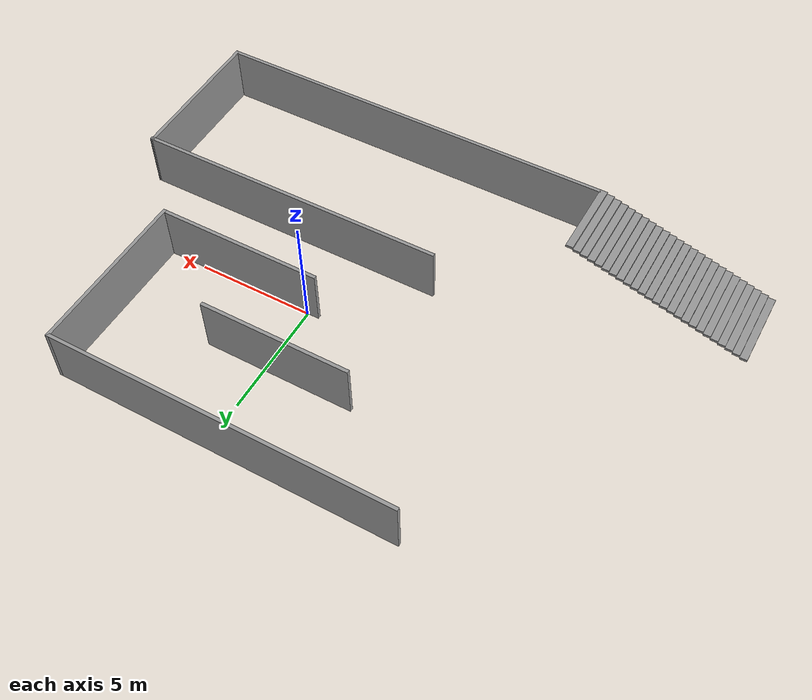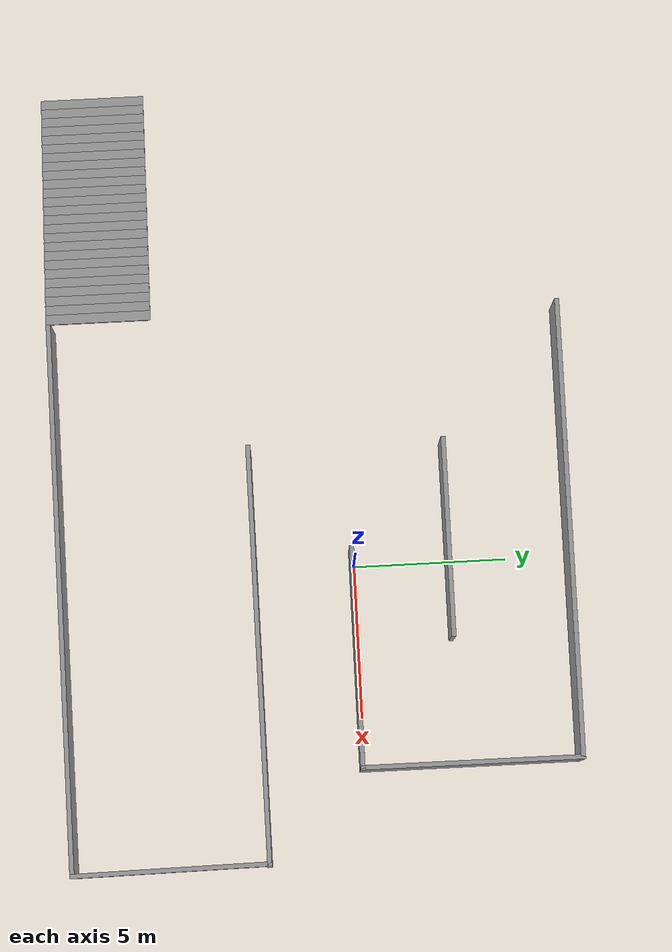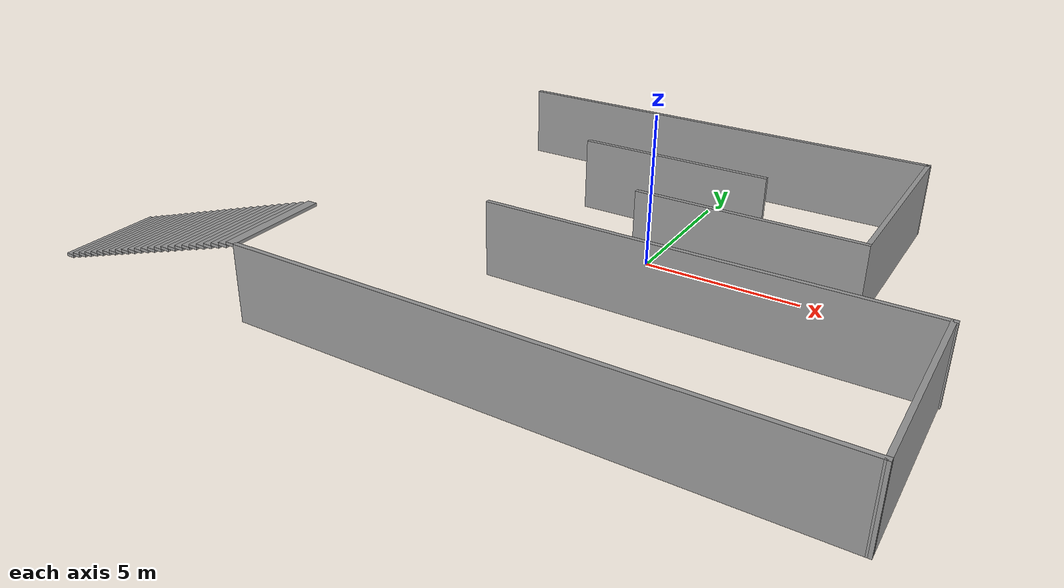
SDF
<sdf version="1.6">
 <model name="Ramp">
  <pose>-3.19363 -1.29296 0 0 -0 0</pose>
  <link name="Stairs_5">
   <visual name="Stairs_5_Visual_0">
    <pose>-12.8006 -6.66524 0.05 0 -0 1.5708</pose>
    <geometry><box><size>3.41 0.3184 0.1</size></box></geometry>
    <material>
     <script><uri>file://media/materials/scripts/gazebo.material</uri><name>Gazebo/Grey</name></script>
     <ambient>1 1 1 1</ambient>
    </material>
   </visual>
   <collision name="Stairs_5_Collision_0">
    <geometry><box><size>3.41 0.3184 0.1</size></box></geometry>
    <pose>-12.8006 -6.66524 0.05 0 -0 1.5708</pose>
   </collision>
   <visual name="Stairs_5_Visual_1">
    <pose>-12.4822 -6.66524 0.15 0 -0 1.5708</pose>
    <geometry><box><size>3.41 0.3184 0.1</size></box></geometry>
    <material>
     <script><uri>file://media/materials/scripts/gazebo.material</uri><name>Gazebo/Grey</name></script>
     <ambient>1 1 1 1</ambient>
    </material>
   </visual>
   <collision name="Stairs_5_Collision_1">
    <geometry><box><size>3.41 0.3184 0.1</size></box></geometry>
    <pose>-12.4822 -6.66524 0.15 0 -0 1.5708</pose>
   </collision>
   <visual name="Stairs_5_Visual_2">
    <pose>-12.1638 -6.66524 0.25 0 -0 1.5708</pose>
    <geometry><box><size>3.41 0.3184 0.1</size></box></geometry>
    <material>
     <script><uri>file://media/materials/scripts/gazebo.material</uri><name>Gazebo/Grey</name></script>
     <ambient>1 1 1 1</ambient>
    </material>
   </visual>
   <collision name="Stairs_5_Collision_2">
    <geometry><box><size>3.41 0.3184 0.1</size></box></geometry>
    <pose>-12.1638 -6.66524 0.25 0 -0 1.5708</pose>
   </collision>
   <visual name="Stairs_5_Visual_3">
    <pose>-11.8454 -6.66524 0.35 0 -0 1.5708</pose>
    <geometry><box><size>3.41 0.3184 0.1</size></box></geometry>
    <material>
     <script><uri>file://media/materials/scripts/gazebo.material</uri><name>Gazebo/Grey</name></script>
     <ambient>1 1 1 1</ambient>
    </material>
   </visual>
   <collision name="Stairs_5_Collision_3">
    <geometry><box><size>3.41 0.3184 0.1</size></box></geometry>
    <pose>-11.8454 -6.66524 0.35 0 -0 1.5708</pose>
   </collision>
   <visual name="Stairs_5_Visual_4">
    <pose>-11.527 -6.66524 0.45 0 -0 1.5708</pose>
    <geometry><box><size>3.41 0.3184 0.1</size></box></geometry>
    <material>
     <script><uri>file://media/materials/scripts/gazebo.material</uri><name>Gazebo/Grey</name></script>
     <ambient>1 1 1 1</ambient>
    </material>
   </visual>
   <collision name="Stairs_5_Collision_4">
    <geometry><box><size>3.41 0.3184 0.1</size></box></geometry>
    <pose>-11.527 -6.66524 0.45 0 -0 1.5708</pose>
   </collision>
   <visual name="Stairs_5_Visual_5">
    <pose>-11.2086 -6.66524 0.55 0 -0 1.5708</pose>
    <geometry><box><size>3.41 0.3184 0.1</size></box></geometry>
    <material>
     <script><uri>file://media/materials/scripts/gazebo.material</uri><name>Gazebo/Grey</name></script>
     <ambient>1 1 1 1</ambient>
    </material>
   </visual>
   <collision name="Stairs_5_Collision_5">
    <geometry><box><size>3.41 0.3184 0.1</size></box></geometry>
    <pose>-11.2086 -6.66524 0.55 0 -0 1.5708</pose>
   </collision>
   <visual name="Stairs_5_Visual_6">
    <pose>-10.8902 -6.66524 0.65 0 -0 1.5708</pose>
    <geometry><box><size>3.41 0.3184 0.1</size></box></geometry>
    <material>
     <script><uri>file://media/materials/scripts/gazebo.material</uri><name>Gazebo/Grey</name></script>
     <ambient>1 1 1 1</ambient>
    </material>
   </visual>
   <collision name="Stairs_5_Collision_6">
    <geometry><box><size>3.41 0.3184 0.1</size></box></geometry>
    <pose>-10.8902 -6.66524 0.65 0 -0 1.5708</pose>
   </collision>
   <visual name="Stairs_5_Visual_7">
    <pose>-10.5718 -6.66524 0.75 0 -0 1.5708</pose>
    <geometry><box><size>3.41 0.3184 0.1</size></box></geometry>
    <material>
     <script><uri>file://media/materials/scripts/gazebo.material</uri><name>Gazebo/Grey</name></script>
     <ambient>1 1 1 1</ambient>
    </material>
   </visual>
   <collision name="Stairs_5_Collision_7">
    <geometry><box><size>3.41 0.3184 0.1</size></box></geometry>
    <pose>-10.5718 -6.66524 0.75 0 -0 1.5708</pose>
   </collision>
   <visual name="Stairs_5_Visual_8">
    <pose>-10.2534 -6.66524 0.85 0 -0 1.5708</pose>
    <geometry><box><size>3.41 0.3184 0.1</size></box></geometry>
    <material>
     <script><uri>file://media/materials/scripts/gazebo.material</uri><name>Gazebo/Grey</name></script>
     <ambient>1 1 1 1</ambient>
    </material>
   </visual>
   <collision name="Stairs_5_Collision_8">
    <geometry><box><size>3.41 0.3184 0.1</size></box></geometry>
    <pose>-10.2534 -6.66524 0.85 0 -0 1.5708</pose>
   </collision>
   <visual name="Stairs_5_Visual_9">
    <pose>-9.93503 -6.66524 0.95 0 -0 1.5708</pose>
    <geometry><box><size>3.41 0.3184 0.1</size></box></geometry>
    <material>
     <script><uri>file://media/materials/scripts/gazebo.material</uri><name>Gazebo/Grey</name></script>
     <ambient>1 1 1 1</ambient>
    </material>
   </visual>
   <collision name="Stairs_5_Collision_9">
    <geometry><box><size>3.41 0.3184 0.1</size></box></geometry>
    <pose>-9.93503 -6.66524 0.95 0 -0 1.5708</pose>
   </collision>
   <visual name="Stairs_5_Visual_10">
    <pose>-9.61663 -6.66524 1.05 0 -0 1.5708</pose>
    <geometry><box><size>3.41 0.3184 0.1</size></box></geometry>
    <material>
     <script><uri>file://media/materials/scripts/gazebo.material</uri><name>Gazebo/Grey</name></script>
     <ambient>1 1 1 1</ambient>
    </material>
   </visual>
   <collision name="Stairs_5_Collision_10">
    <geometry><box><size>3.41 0.3184 0.1</size></box></geometry>
    <pose>-9.61663 -6.66524 1.05 0 -0 1.5708</pose>
   </collision>
   <visual name="Stairs_5_Visual_11">
    <pose>-9.29823 -6.66524 1.15 0 -0 1.5708</pose>
    <geometry><box><size>3.41 0.3184 0.1</size></box></geometry>
    <material>
     <script><uri>file://media/materials/scripts/gazebo.material</uri><name>Gazebo/Grey</name></script>
     <ambient>1 1 1 1</ambient>
    </material>
   </visual>
   <collision name="Stairs_5_Collision_11">
    <geometry><box><size>3.41 0.3184 0.1</size></box></geometry>
    <pose>-9.29823 -6.66524 1.15 0 -0 1.5708</pose>
   </collision>
   <visual name="Stairs_5_Visual_12">
    <pose>-8.97983 -6.66524 1.25 0 -0 1.5708</pose>
    <geometry><box><size>3.41 0.3184 0.1</size></box></geometry>
    <material>
     <script><uri>file://media/materials/scripts/gazebo.material</uri><name>Gazebo/Grey</name></script>
     <ambient>1 1 1 1</ambient>
    </material>
   </visual>
   <collision name="Stairs_5_Collision_12">
    <geometry><box><size>3.41 0.3184 0.1</size></box></geometry>
    <pose>-8.97983 -6.66524 1.25 0 -0 1.5708</pose>
   </collision>
   <visual name="Stairs_5_Visual_13">
    <pose>-8.66143 -6.66524 1.35 0 -0 1.5708</pose>
    <geometry><box><size>3.41 0.3184 0.1</size></box></geometry>
    <material>
     <script><uri>file://media/materials/scripts/gazebo.material</uri><name>Gazebo/Grey</name></script>
     <ambient>1 1 1 1</ambient>
    </material>
   </visual>
   <collision name="Stairs_5_Collision_13">
    <geometry><box><size>3.41 0.3184 0.1</size></box></geometry>
    <pose>-8.66143 -6.66524 1.35 0 -0 1.5708</pose>
   </collision>
   <visual name="Stairs_5_Visual_14">
    <pose>-8.34303 -6.66524 1.45 0 -0 1.5708</pose>
    <geometry><box><size>3.41 0.3184 0.1</size></box></geometry>
    <material>
     <script><uri>file://media/materials/scripts/gazebo.material</uri><name>Gazebo/Grey</name></script>
     <ambient>1 1 1 1</ambient>
    </material>
   </visual>
   <collision name="Stairs_5_Collision_14">
    <geometry><box><size>3.41 0.3184 0.1</size></box></geometry>
    <pose>-8.34303 -6.66524 1.45 0 -0 1.5708</pose>
   </collision>
   <visual name="Stairs_5_Visual_15">
    <pose>-8.02463 -6.66524 1.55 0 -0 1.5708</pose>
    <geometry><box><size>3.41 0.3184 0.1</size></box></geometry>
    <material>
     <script><uri>file://media/materials/scripts/gazebo.material</uri><name>Gazebo/Grey</name></script>
     <ambient>1 1 1 1</ambient>
    </material>
   </visual>
   <collision name="Stairs_5_Collision_15">
    <geometry><box><size>3.41 0.3184 0.1</size></box></geometry>
    <pose>-8.02463 -6.66524 1.55 0 -0 1.5708</pose>
   </collision>
   <visual name="Stairs_5_Visual_16">
    <pose>-7.70623 -6.66524 1.65 0 -0 1.5708</pose>
    <geometry><box><size>3.41 0.3184 0.1</size></box></geometry>
    <material>
     <script><uri>file://media/materials/scripts/gazebo.material</uri><name>Gazebo/Grey</name></script>
     <ambient>1 1 1 1</ambient>
    </material>
   </visual>
   <collision name="Stairs_5_Collision_16">
    <geometry><box><size>3.41 0.3184 0.1</size></box></geometry>
    <pose>-7.70623 -6.66524 1.65 0 -0 1.5708</pose>
   </collision>
   <visual name="Stairs_5_Visual_17">
    <pose>-7.38783 -6.66524 1.75 0 -0 1.5708</pose>
    <geometry><box><size>3.41 0.3184 0.1</size></box></geometry>
    <material>
     <script><uri>file://media/materials/scripts/gazebo.material</uri><name>Gazebo/Grey</name></script>
     <ambient>1 1 1 1</ambient>
    </material>
   </visual>
   <collision name="Stairs_5_Collision_17">
    <geometry><box><size>3.41 0.3184 0.1</size></box></geometry>
    <pose>-7.38783 -6.66524 1.75 0 -0 1.5708</pose>
   </collision>
   <visual name="Stairs_5_Visual_18">
    <pose>-7.06943 -6.66524 1.85 0 -0 1.5708</pose>
    <geometry><box><size>3.41 0.3184 0.1</size></box></geometry>
    <material>
     <script><uri>file://media/materials/scripts/gazebo.material</uri><name>Gazebo/Grey</name></script>
     <ambient>1 1 1 1</ambient>
    </material>
   </visual>
   <collision name="Stairs_5_Collision_18">
    <geometry><box><size>3.41 0.3184 0.1</size></box></geometry>
    <pose>-7.06943 -6.66524 1.85 0 -0 1.5708</pose>
   </collision>
   <visual name="Stairs_5_Visual_19">
    <pose>-6.75103 -6.66524 1.95 0 -0 1.5708</pose>
    <geometry><box><size>3.41 0.3184 0.1</size></box></geometry>
    <material>
     <script><uri>file://media/materials/scripts/gazebo.material</uri><name>Gazebo/Grey</name></script>
     <ambient>1 1 1 1</ambient>
    </material>
   </visual>
   <collision name="Stairs_5_Collision_19">
    <geometry><box><size>3.41 0.3184 0.1</size></box></geometry>
    <pose>-6.75103 -6.66524 1.95 0 -0 1.5708</pose>
   </collision>
   <visual name="Stairs_5_Visual_20">
    <pose>-6.43263 -6.66524 2.05 0 -0 1.5708</pose>
    <geometry><box><size>3.41 0.3184 0.1</size></box></geometry>
    <material>
     <script><uri>file://media/materials/scripts/gazebo.material</uri><name>Gazebo/Grey</name></script>
     <ambient>1 1 1 1</ambient>
    </material>
   </visual>
   <collision name="Stairs_5_Collision_20">
    <geometry><box><size>3.41 0.3184 0.1</size></box></geometry>
    <pose>-6.43263 -6.66524 2.05 0 -0 1.5708</pose>
   </collision>
   <visual name="Stairs_5_Visual_21">
    <pose>-6.11423 -6.66524 2.15 0 -0 1.5708</pose>
    <geometry><box><size>3.41 0.3184 0.1</size></box></geometry>
    <material>
     <script><uri>file://media/materials/scripts/gazebo.material</uri><name>Gazebo/Grey</name></script>
     <ambient>1 1 1 1</ambient>
    </material>
   </visual>
   <collision name="Stairs_5_Collision_21">
    <geometry><box><size>3.41 0.3184 0.1</size></box></geometry>
    <pose>-6.11423 -6.66524 2.15 0 -0 1.5708</pose>
   </collision>
   <visual name="Stairs_5_Visual_22">
    <pose>-5.79583 -6.66524 2.25 0 -0 1.5708</pose>
    <geometry><box><size>3.41 0.3184 0.1</size></box></geometry>
    <material>
     <script><uri>file://media/materials/scripts/gazebo.material</uri><name>Gazebo/Grey</name></script>
     <ambient>1 1 1 1</ambient>
    </material>
   </visual>
   <collision name="Stairs_5_Collision_22">
    <geometry><box><size>3.41 0.3184 0.1</size></box></geometry>
    <pose>-5.79583 -6.66524 2.25 0 -0 1.5708</pose>
   </collision>
   <visual name="Stairs_5_Visual_23">
    <pose>-5.47743 -6.66524 2.35 0 -0 1.5708</pose>
    <geometry><box><size>3.41 0.3184 0.1</size></box></geometry>
    <material>
     <script><uri>file://media/materials/scripts/gazebo.material</uri><name>Gazebo/Grey</name></script>
     <ambient>1 1 1 1</ambient>
    </material>
   </visual>
   <collision name="Stairs_5_Collision_23">
    <geometry><box><size>3.41 0.3184 0.1</size></box></geometry>
    <pose>-5.47743 -6.66524 2.35 0 -0 1.5708</pose>
   </collision>
   <visual name="Stairs_5_Visual_24">
    <pose>-5.15903 -6.66524 2.45 0 -0 1.5708</pose>
    <geometry><box><size>3.41 0.3184 0.1</size></box></geometry>
    <material>
     <script><uri>file://media/materials/scripts/gazebo.material</uri><name>Gazebo/Grey</name></script>
     <ambient>1 1 1 1</ambient>
    </material>
   </visual>
   <collision name="Stairs_5_Collision_24">
    <geometry><box><size>3.41 0.3184 0.1</size></box></geometry>
    <pose>-5.15903 -6.66524 2.45 0 -0 1.5708</pose>
   </collision>
  </link>
  <link name="Wall_10">
   <collision name="Wall_10_Collision">
    <geometry><box><size>18 0.15 2.5</size></box></geometry>
    <pose>0 0 1.25 0 -0 0</pose>
   </collision>
   <visual name="Wall_10_Visual">
    <pose>0 0 1.25 0 -0 0</pose>
    <geometry><box><size>18 0.15 2.5</size></box></geometry>
    <material>
     <script><uri>file://media/materials/scripts/gazebo.material</uri><name>Gazebo/Grey</name></script>
     <ambient>1 1 1 1</ambient>
    </material>
   </visual>
   <pose>3.95888 -8.29965 0 0 -0 0</pose>
  </link>
  <link name="Wall_11">
   <collision name="Wall_11_Collision">
    <geometry><box><size>6.5 0.15 2.5</size></box></geometry>
    <pose>0 0 1.25 0 -0 0</pose>
   </collision>
   <visual name="Wall_11_Visual">
    <pose>0 0 1.25 0 -0 0</pose>
    <geometry><box><size>6.5 0.15 2.5</size></box></geometry>
    <material>
     <script><uri>file://media/materials/scripts/gazebo.material</uri><name>Gazebo/Grey</name></script>
     <ambient>1 1 1 1</ambient>
    </material>
   </visual>
   <pose>12.843 -5.12465 0 0 -0 1.58368</pose>
  </link>
  <link name="Wall_15">
   <collision name="Wall_15_Collision">
    <geometry><box><size>13.6603 0.15 2.5</size></box></geometry>
    <pose>0 0 1.25 0 -0 0</pose>
   </collision>
   <visual name="Wall_15_Visual">
    <pose>0 0 1.25 0 -0 0</pose>
    <geometry><box><size>13.6603 0.15 2.5</size></box></geometry>
    <material>
     <script><uri>file://media/materials/scripts/gazebo.material</uri><name>Gazebo/Grey</name></script>
     <ambient>1 1 1 1</ambient>
    </material>
   </visual>
   <pose>6.08784 -1.97335 0 0 -0 0.003507</pose>
  </link>
  <link name="Wall_3">
   <collision name="Wall_3_Collision">
    <geometry><box><size>6.5 0.15 2.5</size></box></geometry>
    <pose>0 0 1.25 0 -0 0</pose>
   </collision>
   <visual name="Wall_3_Visual">
    <pose>0 0 1.25 0 -0 0</pose>
    <geometry><box><size>6.5 0.15 2.5</size></box></geometry>
    <material>
     <script><uri>file://media/materials/scripts/gazebo.material</uri><name>Gazebo/Grey</name></script>
     <ambient>1 1 1 1</ambient>
    </material>
   </visual>
   <pose>2.54863 4.35296 0 0 -0 0</pose>
  </link>
  <link name="Wall_5">
   <collision name="Wall_5_Collision">
    <geometry><box><size>7.25 0.15 2.5</size></box></geometry>
    <pose>0 0 1.25 0 -0 0</pose>
   </collision>
   <visual name="Wall_5_Visual">
    <pose>0 0 1.25 0 -0 0</pose>
    <geometry><box><size>7.25 0.15 2.5</size></box></geometry>
    <material>
     <script><uri>file://media/materials/scripts/gazebo.material</uri><name>Gazebo/Grey</name></script>
     <ambient>1 1 1 1</ambient>
    </material>
   </visual>
   <pose>6.33388 1.20035 0 0 -0 0</pose>
  </link>
  <link name="Wall_6">
   <collision name="Wall_6_Collision">
    <geometry><box><size>7.25 0.15 2.5</size></box></geometry>
    <pose>0 0 1.25 0 -0 0</pose>
   </collision>
   <visual name="Wall_6_Visual">
    <pose>0 0 1.25 0 -0 0</pose>
    <geometry><box><size>7.25 0.15 2.5</size></box></geometry>
    <material>
     <script><uri>file://media/materials/scripts/gazebo.material</uri><name>Gazebo/Grey</name></script>
     <ambient>1 1 1 1</ambient>
    </material>
   </visual>
   <pose>9.88388 4.75035 0 0 -0 1.5708</pose>
  </link>
  <link name="Wall_7">
   <collision name="Wall_7_Collision">
    <geometry><box><size>15 0.15 2.5</size></box></geometry>
    <pose>0 0 1.25 0 -0 0</pose>
   </collision>
   <visual name="Wall_7_Visual">
    <pose>0 0 1.25 0 -0 0</pose>
    <geometry><box><size>15 0.15 2.5</size></box></geometry>
    <material>
     <script><uri>file://media/materials/scripts/gazebo.material</uri><name>Gazebo/Grey</name></script>
     <ambient>1 1 1 1</ambient>
    </material>
   </visual>
   <pose>2.45888 8.30035 0 0 -0 3.14159</pose>
  </link>
  <static>1</static>
 </model>
</sdf>
